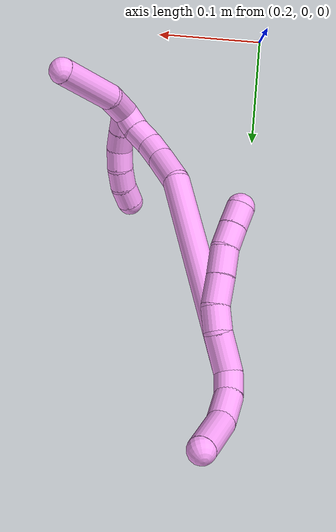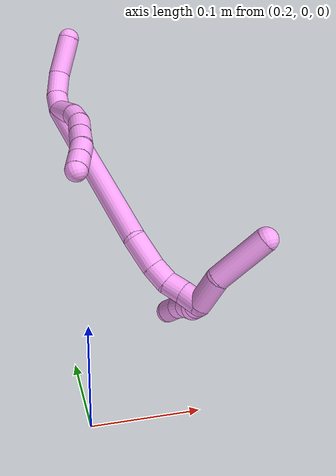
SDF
<sdf version="1.7">
 <world name="default">
  <model name="4">
   <static>0</static>
   <link name="4">
    <collision name="collision-cylinder-e_1_2_8">
     <pose>0.013624 0.003475 0.010951 -0.307241 0.870192 -0.143693</pose>
     <geometry><cylinder><radius>0.0125</radius><length>0.035644</length></cylinder></geometry>
     <surface>
      <friction><ode><mu>1.16</mu><mu2>1.16</mu2><slip1>0</slip1><slip2>0</slip2></ode></friction>
      <contact><ode><kp>1e+06</kp><kd>1</kd><max_vel>0</max_vel><min_depth>0.001</min_depth></ode></contact>
     </surface>
    </collision>
    <visual name="visual-cylinder-e_1_2_8">
     <pose>0.013624 0.003475 0.010951 -0.307241 0.870192 -0.143693</pose>
     <geometry><cylinder><radius>0.0125</radius><length>0.035644</length></cylinder></geometry>
     <material><ambient>1 0.65098 0.996078 1</ambient></material>
    </visual>
    <collision name="collision-cylinder-e_2_8_9">
     <pose>0.033189 0.010097 0.030718 -0.342991 0.565549 -0.100563</pose>
     <geometry><cylinder><radius>0.0125</radius><length>0.022173</length></cylinder></geometry>
     <surface>
      <friction><ode><mu>1.16</mu><mu2>1.16</mu2><slip1>0</slip1><slip2>0</slip2></ode></friction>
      <contact><ode><kp>1e+06</kp><kd>1</kd><max_vel>0</max_vel><min_depth>0.001</min_depth></ode></contact>
     </surface>
    </collision>
    <visual name="visual-cylinder-e_2_8_9">
     <pose>0.033189 0.010097 0.030718 -0.342991 0.565549 -0.100563</pose>
     <geometry><cylinder><radius>0.0125</radius><length>0.022173</length></cylinder></geometry>
     <material><ambient>1 0.65098 0.996078 1</ambient></material>
    </visual>
    <collision name="collision-cylinder-e_3_9_10">
     <pose>0.043926 0.019913 0.049755 -0.578015 0.374392 -0.112519</pose>
     <geometry><cylinder><radius>0.0125</radius><length>0.026226</length></cylinder></geometry>
     <surface>
      <friction><ode><mu>1.16</mu><mu2>1.16</mu2><slip1>0</slip1><slip2>0</slip2></ode></friction>
      <contact><ode><kp>1e+06</kp><kd>1</kd><max_vel>0</max_vel><min_depth>0.001</min_depth></ode></contact>
     </surface>
    </collision>
    <visual name="visual-cylinder-e_3_9_10">
     <pose>0.043926 0.019913 0.049755 -0.578015 0.374392 -0.112519</pose>
     <geometry><cylinder><radius>0.0125</radius><length>0.026226</length></cylinder></geometry>
     <material><ambient>1 0.65098 0.996078 1</ambient></material>
    </visual>
    <collision name="collision-cylinder-e_4_10_11">
     <pose>0.053193 0.032469 0.07005 -0.528937 0.366051 -0.100169</pose>
     <geometry><cylinder><radius>0.0125</radius><length>0.02499</length></cylinder></geometry>
     <surface>
      <friction><ode><mu>1.16</mu><mu2>1.16</mu2><slip1>0</slip1><slip2>0</slip2></ode></friction>
      <contact><ode><kp>1e+06</kp><kd>1</kd><max_vel>0</max_vel><min_depth>0.001</min_depth></ode></contact>
     </surface>
    </collision>
    <visual name="visual-cylinder-e_4_10_11">
     <pose>0.053193 0.032469 0.07005 -0.528937 0.366051 -0.100169</pose>
     <geometry><cylinder><radius>0.0125</radius><length>0.02499</length></cylinder></geometry>
     <material><ambient>1 0.65098 0.996078 1</ambient></material>
    </visual>
    <collision name="collision-cylinder-e_5_11_12">
     <pose>0.059564 0.044555 0.088265 -0.650642 0.183367 -0.062005</pose>
     <geometry><cylinder><radius>0.0125</radius><length>0.020816</length></cylinder></geometry>
     <surface>
      <friction><ode><mu>1.16</mu><mu2>1.16</mu2><slip1>0</slip1><slip2>0</slip2></ode></friction>
      <contact><ode><kp>1e+06</kp><kd>1</kd><max_vel>0</max_vel><min_depth>0.001</min_depth></ode></contact>
     </surface>
    </collision>
    <visual name="visual-cylinder-e_5_11_12">
     <pose>0.059564 0.044555 0.088265 -0.650642 0.183367 -0.062005</pose>
     <geometry><cylinder><radius>0.0125</radius><length>0.020816</length></cylinder></geometry>
     <material><ambient>1 0.65098 0.996078 1</ambient></material>
    </visual>
    <collision name="collision-cylinder-e_6_12_6">
     <pose>0.06299 0.056795 0.104325 -0.651879 0.152266 -0.051553</pose>
     <geometry><cylinder><radius>0.0125</radius><length>0.020151</length></cylinder></geometry>
     <surface>
      <friction><ode><mu>1.16</mu><mu2>1.16</mu2><slip1>0</slip1><slip2>0</slip2></ode></friction>
      <contact><ode><kp>1e+06</kp><kd>1</kd><max_vel>0</max_vel><min_depth>0.001</min_depth></ode></contact>
     </surface>
    </collision>
    <visual name="visual-cylinder-e_6_12_6">
     <pose>0.06299 0.056795 0.104325 -0.651879 0.152266 -0.051553</pose>
     <geometry><cylinder><radius>0.0125</radius><length>0.020151</length></cylinder></geometry>
     <material><ambient>1 0.65098 0.996078 1</ambient></material>
    </visual>
    <collision name="collision-cylinder-e_1_2_13">
     <pose>-0.001193 -0.002656 -0.010752 2.89943 -0.107278 -0.831115</pose>
     <geometry><cylinder><radius>0.0125</radius><length>0.022279</length></cylinder></geometry>
     <surface>
      <friction><ode><mu>1.16</mu><mu2>1.16</mu2><slip1>0</slip1><slip2>0</slip2></ode></friction>
      <contact><ode><kp>1e+06</kp><kd>1</kd><max_vel>0</max_vel><min_depth>0.001</min_depth></ode></contact>
     </surface>
    </collision>
    <visual name="visual-cylinder-e_1_2_13">
     <pose>-0.001193 -0.002656 -0.010752 2.89943 -0.107278 -0.831115</pose>
     <geometry><cylinder><radius>0.0125</radius><length>0.022279</length></cylinder></geometry>
     <material><ambient>1 0.65098 0.996078 1</ambient></material>
    </visual>
    <collision name="collision-cylinder-e_2_13_14">
     <pose>0.000105 -0.01045 -0.035415 2.78774 0.166385 0.872754</pose>
     <geometry><cylinder><radius>0.0125</radius><length>0.030073</length></cylinder></geometry>
     <surface>
      <friction><ode><mu>1.16</mu><mu2>1.16</mu2><slip1>0</slip1><slip2>0</slip2></ode></friction>
      <contact><ode><kp>1e+06</kp><kd>1</kd><max_vel>0</max_vel><min_depth>0.001</min_depth></ode></contact>
     </surface>
    </collision>
    <visual name="visual-cylinder-e_2_13_14">
     <pose>0.000105 -0.01045 -0.035415 2.78774 0.166385 0.872754</pose>
     <geometry><cylinder><radius>0.0125</radius><length>0.030073</length></cylinder></geometry>
     <material><ambient>1 0.65098 0.996078 1</ambient></material>
    </visual>
    <collision name="collision-cylinder-e_3_14_5">
     <pose>0.014299 -0.022223 -0.068987 2.81619 0.513536 2.02413</pose>
     <geometry><cylinder><radius>0.0125</radius><length>0.047648</length></cylinder></geometry>
     <surface>
      <friction><ode><mu>1.16</mu><mu2>1.16</mu2><slip1>0</slip1><slip2>0</slip2></ode></friction>
      <contact><ode><kp>1e+06</kp><kd>1</kd><max_vel>0</max_vel><min_depth>0.001</min_depth></ode></contact>
     </surface>
    </collision>
    <visual name="visual-cylinder-e_3_14_5">
     <pose>0.014299 -0.022223 -0.068987 2.81619 0.513536 2.02413</pose>
     <geometry><cylinder><radius>0.0125</radius><length>0.047648</length></cylinder></geometry>
     <material><ambient>1 0.65098 0.996078 1</ambient></material>
    </visual>
    <collision name="collision-cylinder-e_1_2_15">
     <pose>0.029717 0.005664 0.095506 -0.059235 0.301162 -0.00899</pose>
     <geometry><cylinder><radius>0.0125</radius><length>0.200365</length></cylinder></geometry>
     <surface>
      <friction><ode><mu>1.16</mu><mu2>1.16</mu2><slip1>0</slip1><slip2>0</slip2></ode></friction>
      <contact><ode><kp>1e+06</kp><kd>1</kd><max_vel>0</max_vel><min_depth>0.001</min_depth></ode></contact>
     </surface>
    </collision>
    <visual name="visual-cylinder-e_1_2_15">
     <pose>0.029717 0.005664 0.095506 -0.059235 0.301162 -0.00899</pose>
     <geometry><cylinder><radius>0.0125</radius><length>0.200365</length></cylinder></geometry>
     <material><ambient>1 0.65098 0.996078 1</ambient></material>
    </visual>
    <collision name="collision-cylinder-e_2_15_16">
     <pose>0.061453 0.007174 0.208566 0.232371 0.111453 0.013021</pose>
     <geometry><cylinder><radius>0.0125</radius><length>0.036304</length></cylinder></geometry>
     <surface>
      <friction><ode><mu>1.16</mu><mu2>1.16</mu2><slip1>0</slip1><slip2>0</slip2></ode></friction>
      <contact><ode><kp>1e+06</kp><kd>1</kd><max_vel>0</max_vel><min_depth>0.001</min_depth></ode></contact>
     </surface>
    </collision>
    <visual name="visual-cylinder-e_2_15_16">
     <pose>0.061453 0.007174 0.208566 0.232371 0.111453 0.013021</pose>
     <geometry><cylinder><radius>0.0125</radius><length>0.036304</length></cylinder></geometry>
     <material><ambient>1 0.65098 0.996078 1</ambient></material>
    </visual>
    <collision name="collision-cylinder-e_3_16_17">
     <pose>0.066385 0.000184 0.236431 0.268411 0.265948 0.036117</pose>
     <geometry><cylinder><radius>0.0125</radius><length>0.022166</length></cylinder></geometry>
     <surface>
      <friction><ode><mu>1.16</mu><mu2>1.16</mu2><slip1>0</slip1><slip2>0</slip2></ode></friction>
      <contact><ode><kp>1e+06</kp><kd>1</kd><max_vel>0</max_vel><min_depth>0.001</min_depth></ode></contact>
     </surface>
    </collision>
    <visual name="visual-cylinder-e_3_16_17">
     <pose>0.066385 0.000184 0.236431 0.268411 0.265948 0.036117</pose>
     <geometry><cylinder><radius>0.0125</radius><length>0.022166</length></cylinder></geometry>
     <material><ambient>1 0.65098 0.996078 1</ambient></material>
    </visual>
    <collision name="collision-cylinder-e_4_17_18">
     <pose>0.074585 -0.006079 0.254758 0.403996 0.545142 0.114365</pose>
     <geometry><cylinder><radius>0.0125</radius><length>0.020394</length></cylinder></geometry>
     <surface>
      <friction><ode><mu>1.16</mu><mu2>1.16</mu2><slip1>0</slip1><slip2>0</slip2></ode></friction>
      <contact><ode><kp>1e+06</kp><kd>1</kd><max_vel>0</max_vel><min_depth>0.001</min_depth></ode></contact>
     </surface>
    </collision>
    <visual name="visual-cylinder-e_4_17_18">
     <pose>0.074585 -0.006079 0.254758 0.403996 0.545142 0.114365</pose>
     <geometry><cylinder><radius>0.0125</radius><length>0.020394</length></cylinder></geometry>
     <material><ambient>1 0.65098 0.996078 1</ambient></material>
    </visual>
    <collision name="collision-cylinder-e_5_18_1">
     <pose>0.085495 -0.011485 0.271281 0.228462 0.571986 0.067448</pose>
     <geometry><cylinder><radius>0.0125</radius><length>0.020771</length></cylinder></geometry>
     <surface>
      <friction><ode><mu>1.16</mu><mu2>1.16</mu2><slip1>0</slip1><slip2>0</slip2></ode></friction>
      <contact><ode><kp>1e+06</kp><kd>1</kd><max_vel>0</max_vel><min_depth>0.001</min_depth></ode></contact>
     </surface>
    </collision>
    <visual name="visual-cylinder-e_5_18_1">
     <pose>0.085495 -0.011485 0.271281 0.228462 0.571986 0.067448</pose>
     <geometry><cylinder><radius>0.0125</radius><length>0.020771</length></cylinder></geometry>
     <material><ambient>1 0.65098 0.996078 1</ambient></material>
    </visual>
    <collision name="collision-cylinder-e_1_1_19">
     <pose>0.083068 -0.019355 0.279082 1.68984 -0.935457 -1.03482</pose>
     <geometry><cylinder><radius>0.0125</radius><length>0.02</length></cylinder></geometry>
     <surface>
      <friction><ode><mu>1.16</mu><mu2>1.16</mu2><slip1>0</slip1><slip2>0</slip2></ode></friction>
      <contact><ode><kp>1e+06</kp><kd>1</kd><max_vel>0</max_vel><min_depth>0.001</min_depth></ode></contact>
     </surface>
    </collision>
    <visual name="visual-cylinder-e_1_1_19">
     <pose>0.083068 -0.019355 0.279082 1.68984 -0.935457 -1.03482</pose>
     <geometry><cylinder><radius>0.0125</radius><length>0.02</length></cylinder></geometry>
     <material><ambient>1 0.65098 0.996078 1</ambient></material>
    </visual>
    <collision name="collision-cylinder-e_2_19_20">
     <pose>0.066841 -0.03095 0.277606 1.70519 -0.957626 -1.07202</pose>
     <geometry><cylinder><radius>0.0125</radius><length>0.02</length></cylinder></geometry>
     <surface>
      <friction><ode><mu>1.16</mu><mu2>1.16</mu2><slip1>0</slip1><slip2>0</slip2></ode></friction>
      <contact><ode><kp>1e+06</kp><kd>1</kd><max_vel>0</max_vel><min_depth>0.001</min_depth></ode></contact>
     </surface>
    </collision>
    <visual name="visual-cylinder-e_2_19_20">
     <pose>0.066841 -0.03095 0.277606 1.70519 -0.957626 -1.07202</pose>
     <geometry><cylinder><radius>0.0125</radius><length>0.02</length></cylinder></geometry>
     <material><ambient>1 0.65098 0.996078 1</ambient></material>
    </visual>
    <collision name="collision-cylinder-e_3_20_21">
     <pose>0.050396 -0.04099 0.273248 2.26178 -0.973083 -1.68729</pose>
     <geometry><cylinder><radius>0.0125</radius><length>0.02</length></cylinder></geometry>
     <surface>
      <friction><ode><mu>1.16</mu><mu2>1.16</mu2><slip1>0</slip1><slip2>0</slip2></ode></friction>
      <contact><ode><kp>1e+06</kp><kd>1</kd><max_vel>0</max_vel><min_depth>0.001</min_depth></ode></contact>
     </surface>
    </collision>
    <visual name="visual-cylinder-e_3_20_21">
     <pose>0.050396 -0.04099 0.273248 2.26178 -0.973083 -1.68729</pose>
     <geometry><cylinder><radius>0.0125</radius><length>0.02</length></cylinder></geometry>
     <material><ambient>1 0.65098 0.996078 1</ambient></material>
    </visual>
    <collision name="collision-cylinder-e_4_21_22">
     <pose>0.032888 -0.048619 0.267729 2.10168 -1.17896 -1.72565</pose>
     <geometry><cylinder><radius>0.0125</radius><length>0.02</length></cylinder></geometry>
     <surface>
      <friction><ode><mu>1.16</mu><mu2>1.16</mu2><slip1>0</slip1><slip2>0</slip2></ode></friction>
      <contact><ode><kp>1e+06</kp><kd>1</kd><max_vel>0</max_vel><min_depth>0.001</min_depth></ode></contact>
     </surface>
    </collision>
    <visual name="visual-cylinder-e_4_21_22">
     <pose>0.032888 -0.048619 0.267729 2.10168 -1.17896 -1.72565</pose>
     <geometry><cylinder><radius>0.0125</radius><length>0.02</length></cylinder></geometry>
     <material><ambient>1 0.65098 0.996078 1</ambient></material>
    </visual>
    <collision name="collision-cylinder-e_5_22_4">
     <pose>0.013774 -0.053346 0.265092 2.02654 -1.41047 -1.87726</pose>
     <geometry><cylinder><radius>0.0125</radius><length>0.02</length></cylinder></geometry>
     <surface>
      <friction><ode><mu>1.16</mu><mu2>1.16</mu2><slip1>0</slip1><slip2>0</slip2></ode></friction>
      <contact><ode><kp>1e+06</kp><kd>1</kd><max_vel>0</max_vel><min_depth>0.001</min_depth></ode></contact>
     </surface>
    </collision>
    <visual name="visual-cylinder-e_5_22_4">
     <pose>0.013774 -0.053346 0.265092 2.02654 -1.41047 -1.87726</pose>
     <geometry><cylinder><radius>0.0125</radius><length>0.02</length></cylinder></geometry>
     <material><ambient>1 0.65098 0.996078 1</ambient></material>
    </visual>
    <collision name="collision-cylinder-e_1_1_23">
     <pose>0.107937 -0.013792 0.272485 3.09647 1.1609 3.0728</pose>
     <geometry><cylinder><radius>0.0125</radius><length>0.03668</length></cylinder></geometry>
     <surface>
      <friction><ode><mu>1.16</mu><mu2>1.16</mu2><slip1>0</slip1><slip2>0</slip2></ode></friction>
      <contact><ode><kp>1e+06</kp><kd>1</kd><max_vel>0</max_vel><min_depth>0.001</min_depth></ode></contact>
     </surface>
    </collision>
    <visual name="visual-cylinder-e_1_1_23">
     <pose>0.107937 -0.013792 0.272485 3.09647 1.1609 3.0728</pose>
     <geometry><cylinder><radius>0.0125</radius><length>0.03668</length></cylinder></geometry>
     <material><ambient>1 0.65098 0.996078 1</ambient></material>
    </visual>
    <collision name="collision-cylinder-e_2_23_3">
     <pose>0.153772 -0.024003 0.257251 2.24728 1.15901 1.87687</pose>
     <geometry><cylinder><radius>0.0125</radius><length>0.06332</length></cylinder></geometry>
     <surface>
      <friction><ode><mu>1.16</mu><mu2>1.16</mu2><slip1>0</slip1><slip2>0</slip2></ode></friction>
      <contact><ode><kp>1e+06</kp><kd>1</kd><max_vel>0</max_vel><min_depth>0.001</min_depth></ode></contact>
     </surface>
    </collision>
    <visual name="visual-cylinder-e_2_23_3">
     <pose>0.153772 -0.024003 0.257251 2.24728 1.15901 1.87687</pose>
     <geometry><cylinder><radius>0.0125</radius><length>0.06332</length></cylinder></geometry>
     <material><ambient>1 0.65098 0.996078 1</ambient></material>
    </visual>
    <collision name="collision-sphere-3">
     <pose>0.182785 -0.033884 0.249317 0 -0 0</pose>
     <geometry><sphere><radius>0.0125</radius></sphere></geometry>
     <surface>
      <friction><ode><mu>1.16</mu><mu2>1.16</mu2><slip1>0</slip1><slip2>0</slip2></ode></friction>
      <contact><ode><kp>1e+06</kp><kd>1</kd><max_vel>0</max_vel><min_depth>0.001</min_depth></ode></contact>
     </surface>
    </collision>
    <visual name="visual-sphere-3">
     <pose>0.182785 -0.033884 0.249317 0 -0 0</pose>
     <geometry><sphere><radius>0.0125</radius></sphere></geometry>
     <material><ambient>1 0.65098 0.996078 1</ambient></material>
    </visual>
    <collision name="collision-sphere-23">
     <pose>0.124758 -0.014122 0.265184 0 -0 0</pose>
     <geometry><sphere><radius>0.0125</radius></sphere></geometry>
     <surface>
      <friction><ode><mu>1.16</mu><mu2>1.16</mu2><slip1>0</slip1><slip2>0</slip2></ode></friction>
      <contact><ode><kp>1e+06</kp><kd>1</kd><max_vel>0</max_vel><min_depth>0.001</min_depth></ode></contact>
     </surface>
    </collision>
    <visual name="visual-sphere-23">
     <pose>0.124758 -0.014122 0.265184 0 -0 0</pose>
     <geometry><sphere><radius>0.0125</radius></sphere></geometry>
     <material><ambient>1 0.65098 0.996078 1</ambient></material>
    </visual>
    <collision name="collision-sphere-4">
     <pose>0.003902 -0.05478 0.26439 0 -0 0</pose>
     <geometry><sphere><radius>0.0125</radius></sphere></geometry>
     <surface>
      <friction><ode><mu>1.16</mu><mu2>1.16</mu2><slip1>0</slip1><slip2>0</slip2></ode></friction>
      <contact><ode><kp>1e+06</kp><kd>1</kd><max_vel>0</max_vel><min_depth>0.001</min_depth></ode></contact>
     </surface>
    </collision>
    <visual name="visual-sphere-4">
     <pose>0.003902 -0.05478 0.26439 0 -0 0</pose>
     <geometry><sphere><radius>0.0125</radius></sphere></geometry>
     <material><ambient>1 0.65098 0.996078 1</ambient></material>
    </visual>
    <collision name="collision-sphere-22">
     <pose>0.023646 -0.051913 0.265795 0 -0 0</pose>
     <geometry><sphere><radius>0.0125</radius></sphere></geometry>
     <surface>
      <friction><ode><mu>1.16</mu><mu2>1.16</mu2><slip1>0</slip1><slip2>0</slip2></ode></friction>
      <contact><ode><kp>1e+06</kp><kd>1</kd><max_vel>0</max_vel><min_depth>0.001</min_depth></ode></contact>
     </surface>
    </collision>
    <visual name="visual-sphere-22">
     <pose>0.023646 -0.051913 0.265795 0 -0 0</pose>
     <geometry><sphere><radius>0.0125</radius></sphere></geometry>
     <material><ambient>1 0.65098 0.996078 1</ambient></material>
    </visual>
    <collision name="collision-sphere-21">
     <pose>0.04213 -0.045326 0.269662 0 -0 0</pose>
     <geometry><sphere><radius>0.0125</radius></sphere></geometry>
     <surface>
      <friction><ode><mu>1.16</mu><mu2>1.16</mu2><slip1>0</slip1><slip2>0</slip2></ode></friction>
      <contact><ode><kp>1e+06</kp><kd>1</kd><max_vel>0</max_vel><min_depth>0.001</min_depth></ode></contact>
     </surface>
    </collision>
    <visual name="visual-sphere-21">
     <pose>0.04213 -0.045326 0.269662 0 -0 0</pose>
     <geometry><sphere><radius>0.0125</radius></sphere></geometry>
     <material><ambient>1 0.65098 0.996078 1</ambient></material>
    </visual>
    <collision name="collision-sphere-20">
     <pose>0.058663 -0.036653 0.276835 0 -0 0</pose>
     <geometry><sphere><radius>0.0125</radius></sphere></geometry>
     <surface>
      <friction><ode><mu>1.16</mu><mu2>1.16</mu2><slip1>0</slip1><slip2>0</slip2></ode></friction>
      <contact><ode><kp>1e+06</kp><kd>1</kd><max_vel>0</max_vel><min_depth>0.001</min_depth></ode></contact>
     </surface>
    </collision>
    <visual name="visual-sphere-20">
     <pose>0.058663 -0.036653 0.276835 0 -0 0</pose>
     <geometry><sphere><radius>0.0125</radius></sphere></geometry>
     <material><ambient>1 0.65098 0.996078 1</ambient></material>
    </visual>
    <collision name="collision-sphere-12">
     <pose>0.061461 0.050753 0.096408 0 -0 0</pose>
     <geometry><sphere><radius>0.0125</radius></sphere></geometry>
     <surface>
      <friction><ode><mu>1.16</mu><mu2>1.16</mu2><slip1>0</slip1><slip2>0</slip2></ode></friction>
      <contact><ode><kp>1e+06</kp><kd>1</kd><max_vel>0</max_vel><min_depth>0.001</min_depth></ode></contact>
     </surface>
    </collision>
    <visual name="visual-sphere-12">
     <pose>0.061461 0.050753 0.096408 0 -0 0</pose>
     <geometry><sphere><radius>0.0125</radius></sphere></geometry>
     <material><ambient>1 0.65098 0.996078 1</ambient></material>
    </visual>
    <collision name="collision-sphere-11">
     <pose>0.057666 0.038356 0.080122 0 -0 0</pose>
     <geometry><sphere><radius>0.0125</radius></sphere></geometry>
     <surface>
      <friction><ode><mu>1.16</mu><mu2>1.16</mu2><slip1>0</slip1><slip2>0</slip2></ode></friction>
      <contact><ode><kp>1e+06</kp><kd>1</kd><max_vel>0</max_vel><min_depth>0.001</min_depth></ode></contact>
     </surface>
    </collision>
    <visual name="visual-sphere-11">
     <pose>0.057666 0.038356 0.080122 0 -0 0</pose>
     <geometry><sphere><radius>0.0125</radius></sphere></geometry>
     <material><ambient>1 0.65098 0.996078 1</ambient></material>
    </visual>
    <collision name="collision-sphere-10">
     <pose>0.048721 0.026582 0.059977 0 -0 0</pose>
     <geometry><sphere><radius>0.0125</radius></sphere></geometry>
     <surface>
      <friction><ode><mu>1.16</mu><mu2>1.16</mu2><slip1>0</slip1><slip2>0</slip2></ode></friction>
      <contact><ode><kp>1e+06</kp><kd>1</kd><max_vel>0</max_vel><min_depth>0.001</min_depth></ode></contact>
     </surface>
    </collision>
    <visual name="visual-sphere-10">
     <pose>0.048721 0.026582 0.059977 0 -0 0</pose>
     <geometry><sphere><radius>0.0125</radius></sphere></geometry>
     <material><ambient>1 0.65098 0.996078 1</ambient></material>
    </visual>
    <collision name="collision-sphere-9">
     <pose>0.03913 0.013245 0.039533 0 -0 0</pose>
     <geometry><sphere><radius>0.0125</radius></sphere></geometry>
     <surface>
      <friction><ode><mu>1.16</mu><mu2>1.16</mu2><slip1>0</slip1><slip2>0</slip2></ode></friction>
      <contact><ode><kp>1e+06</kp><kd>1</kd><max_vel>0</max_vel><min_depth>0.001</min_depth></ode></contact>
     </surface>
    </collision>
    <visual name="visual-sphere-9">
     <pose>0.03913 0.013245 0.039533 0 -0 0</pose>
     <geometry><sphere><radius>0.0125</radius></sphere></geometry>
     <material><ambient>1 0.65098 0.996078 1</ambient></material>
    </visual>
    <collision name="collision-sphere-2">
     <geometry><sphere><radius>0.0125</radius></sphere></geometry>
     <surface>
      <friction><ode><mu>1.16</mu><mu2>1.16</mu2><slip1>0</slip1><slip2>0</slip2></ode></friction>
      <contact><ode><kp>1e+06</kp><kd>1</kd><max_vel>0</max_vel><min_depth>0.001</min_depth></ode></contact>
     </surface>
    </collision>
    <visual name="visual-sphere-2">
     <geometry><sphere><radius>0.0125</radius></sphere></geometry>
     <material><ambient>1 0.65098 0.996078 1</ambient></material>
    </visual>
    <collision name="collision-sphere-19">
     <pose>0.075019 -0.025247 0.278377 0 -0 0</pose>
     <geometry><sphere><radius>0.0125</radius></sphere></geometry>
     <surface>
      <friction><ode><mu>1.16</mu><mu2>1.16</mu2><slip1>0</slip1><slip2>0</slip2></ode></friction>
      <contact><ode><kp>1e+06</kp><kd>1</kd><max_vel>0</max_vel><min_depth>0.001</min_depth></ode></contact>
     </surface>
    </collision>
    <visual name="visual-sphere-19">
     <pose>0.075019 -0.025247 0.278377 0 -0 0</pose>
     <geometry><sphere><radius>0.0125</radius></sphere></geometry>
     <material><ambient>1 0.65098 0.996078 1</ambient></material>
    </visual>
    <collision name="collision-sphere-8">
     <pose>0.027248 0.00695 0.021903 0 -0 0</pose>
     <geometry><sphere><radius>0.0125</radius></sphere></geometry>
     <surface>
      <friction><ode><mu>1.16</mu><mu2>1.16</mu2><slip1>0</slip1><slip2>0</slip2></ode></friction>
      <contact><ode><kp>1e+06</kp><kd>1</kd><max_vel>0</max_vel><min_depth>0.001</min_depth></ode></contact>
     </surface>
    </collision>
    <visual name="visual-sphere-8">
     <pose>0.027248 0.00695 0.021903 0 -0 0</pose>
     <geometry><sphere><radius>0.0125</radius></sphere></geometry>
     <material><ambient>1 0.65098 0.996078 1</ambient></material>
    </visual>
    <collision name="collision-sphere-6">
     <pose>0.064518 0.062837 0.112242 0 -0 0</pose>
     <geometry><sphere><radius>0.0125</radius></sphere></geometry>
     <surface>
      <friction><ode><mu>1.16</mu><mu2>1.16</mu2><slip1>0</slip1><slip2>0</slip2></ode></friction>
      <contact><ode><kp>1e+06</kp><kd>1</kd><max_vel>0</max_vel><min_depth>0.001</min_depth></ode></contact>
     </surface>
    </collision>
    <visual name="visual-sphere-6">
     <pose>0.064518 0.062837 0.112242 0 -0 0</pose>
     <geometry><sphere><radius>0.0125</radius></sphere></geometry>
     <material><ambient>1 0.65098 0.996078 1</ambient></material>
    </visual>
    <collision name="collision-sphere-13">
     <pose>-0.002385 -0.005312 -0.021505 0 -0 0</pose>
     <geometry><sphere><radius>0.0125</radius></sphere></geometry>
     <surface>
      <friction><ode><mu>1.16</mu><mu2>1.16</mu2><slip1>0</slip1><slip2>0</slip2></ode></friction>
      <contact><ode><kp>1e+06</kp><kd>1</kd><max_vel>0</max_vel><min_depth>0.001</min_depth></ode></contact>
     </surface>
    </collision>
    <visual name="visual-sphere-13">
     <pose>-0.002385 -0.005312 -0.021505 0 -0 0</pose>
     <geometry><sphere><radius>0.0125</radius></sphere></geometry>
     <material><ambient>1 0.65098 0.996078 1</ambient></material>
    </visual>
    <collision name="collision-sphere-14">
     <pose>0.002595 -0.015589 -0.049325 0 -0 0</pose>
     <geometry><sphere><radius>0.0125</radius></sphere></geometry>
     <surface>
      <friction><ode><mu>1.16</mu><mu2>1.16</mu2><slip1>0</slip1><slip2>0</slip2></ode></friction>
      <contact><ode><kp>1e+06</kp><kd>1</kd><max_vel>0</max_vel><min_depth>0.001</min_depth></ode></contact>
     </surface>
    </collision>
    <visual name="visual-sphere-14">
     <pose>0.002595 -0.015589 -0.049325 0 -0 0</pose>
     <geometry><sphere><radius>0.0125</radius></sphere></geometry>
     <material><ambient>1 0.65098 0.996078 1</ambient></material>
    </visual>
    <collision name="collision-sphere-5">
     <pose>0.026003 -0.028856 -0.088649 0 -0 0</pose>
     <geometry><sphere><radius>0.0125</radius></sphere></geometry>
     <surface>
      <friction><ode><mu>1.16</mu><mu2>1.16</mu2><slip1>0</slip1><slip2>0</slip2></ode></friction>
      <contact><ode><kp>1e+06</kp><kd>1</kd><max_vel>0</max_vel><min_depth>0.001</min_depth></ode></contact>
     </surface>
    </collision>
    <visual name="visual-sphere-5">
     <pose>0.026003 -0.028856 -0.088649 0 -0 0</pose>
     <geometry><sphere><radius>0.0125</radius></sphere></geometry>
     <material><ambient>1 0.65098 0.996078 1</ambient></material>
    </visual>
    <collision name="collision-sphere-15">
     <pose>0.059434 0.011328 0.191012 0 -0 0</pose>
     <geometry><sphere><radius>0.0125</radius></sphere></geometry>
     <surface>
      <friction><ode><mu>1.16</mu><mu2>1.16</mu2><slip1>0</slip1><slip2>0</slip2></ode></friction>
      <contact><ode><kp>1e+06</kp><kd>1</kd><max_vel>0</max_vel><min_depth>0.001</min_depth></ode></contact>
     </surface>
    </collision>
    <visual name="visual-sphere-15">
     <pose>0.059434 0.011328 0.191012 0 -0 0</pose>
     <geometry><sphere><radius>0.0125</radius></sphere></geometry>
     <material><ambient>1 0.65098 0.996078 1</ambient></material>
    </visual>
    <collision name="collision-sphere-16">
     <pose>0.063472 0.00302 0.226121 0 -0 0</pose>
     <geometry><sphere><radius>0.0125</radius></sphere></geometry>
     <surface>
      <friction><ode><mu>1.16</mu><mu2>1.16</mu2><slip1>0</slip1><slip2>0</slip2></ode></friction>
      <contact><ode><kp>1e+06</kp><kd>1</kd><max_vel>0</max_vel><min_depth>0.001</min_depth></ode></contact>
     </surface>
    </collision>
    <visual name="visual-sphere-16">
     <pose>0.063472 0.00302 0.226121 0 -0 0</pose>
     <geometry><sphere><radius>0.0125</radius></sphere></geometry>
     <material><ambient>1 0.65098 0.996078 1</ambient></material>
    </visual>
    <collision name="collision-sphere-17">
     <pose>0.069298 -0.002652 0.246741 0 -0 0</pose>
     <geometry><sphere><radius>0.0125</radius></sphere></geometry>
     <surface>
      <friction><ode><mu>1.16</mu><mu2>1.16</mu2><slip1>0</slip1><slip2>0</slip2></ode></friction>
      <contact><ode><kp>1e+06</kp><kd>1</kd><max_vel>0</max_vel><min_depth>0.001</min_depth></ode></contact>
     </surface>
    </collision>
    <visual name="visual-sphere-17">
     <pose>0.069298 -0.002652 0.246741 0 -0 0</pose>
     <geometry><sphere><radius>0.0125</radius></sphere></geometry>
     <material><ambient>1 0.65098 0.996078 1</ambient></material>
    </visual>
    <collision name="collision-sphere-18">
     <pose>0.079873 -0.009507 0.262775 0 -0 0</pose>
     <geometry><sphere><radius>0.0125</radius></sphere></geometry>
     <surface>
      <friction><ode><mu>1.16</mu><mu2>1.16</mu2><slip1>0</slip1><slip2>0</slip2></ode></friction>
      <contact><ode><kp>1e+06</kp><kd>1</kd><max_vel>0</max_vel><min_depth>0.001</min_depth></ode></contact>
     </surface>
    </collision>
    <visual name="visual-sphere-18">
     <pose>0.079873 -0.009507 0.262775 0 -0 0</pose>
     <geometry><sphere><radius>0.0125</radius></sphere></geometry>
     <material><ambient>1 0.65098 0.996078 1</ambient></material>
    </visual>
    <collision name="collision-sphere-1">
     <pose>0.091117 -0.013462 0.279787 0 -0 0</pose>
     <geometry><sphere><radius>0.0125</radius></sphere></geometry>
     <surface>
      <friction><ode><mu>1.16</mu><mu2>1.16</mu2><slip1>0</slip1><slip2>0</slip2></ode></friction>
      <contact><ode><kp>1e+06</kp><kd>1</kd><max_vel>0</max_vel><min_depth>0.001</min_depth></ode></contact>
     </surface>
    </collision>
    <visual name="visual-sphere-1">
     <pose>0.091117 -0.013462 0.279787 0 -0 0</pose>
     <geometry><sphere><radius>0.0125</radius></sphere></geometry>
     <material><ambient>1 0.65098 0.996078 1</ambient></material>
    </visual>
    <inertial>
     <pose>0.051278 -0.003377 0.133057 0 -0 0</pose>
     <mass>0.75</mass>
     <inertia>
      <ixx>0.000688</ixx>
      <ixy>0</ixy>
      <ixz>0</ixz>
      <iyy>0.000741</iyy>
      <iyz>0</iyz>
      <izz>-0.000243</izz>
     </inertia>
    </inertial>
   </link>
   <pose>0.217759 0.308285 0.220453 2.89766 -0.670503 -0.897058</pose>
  </model>
 </world>
</sdf>
